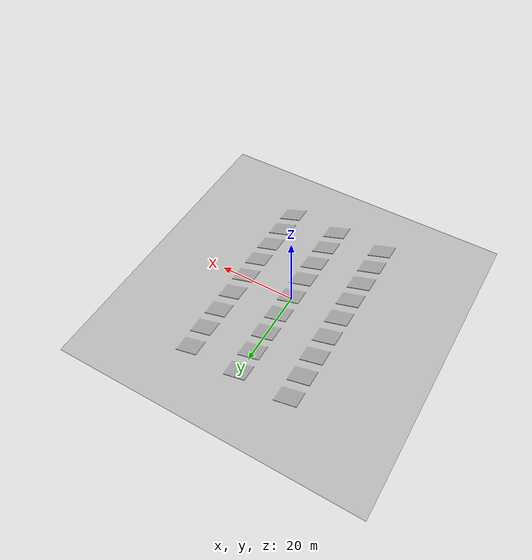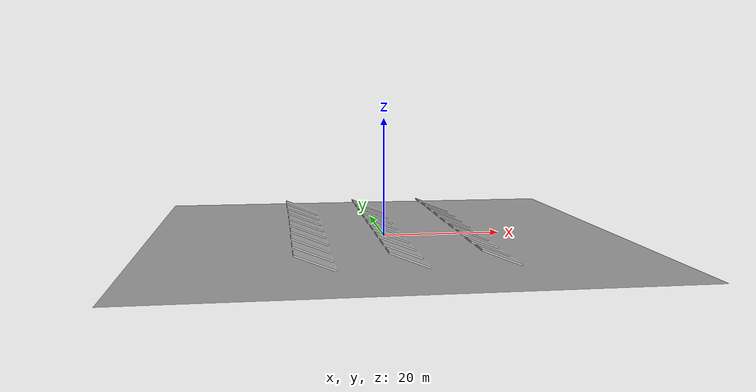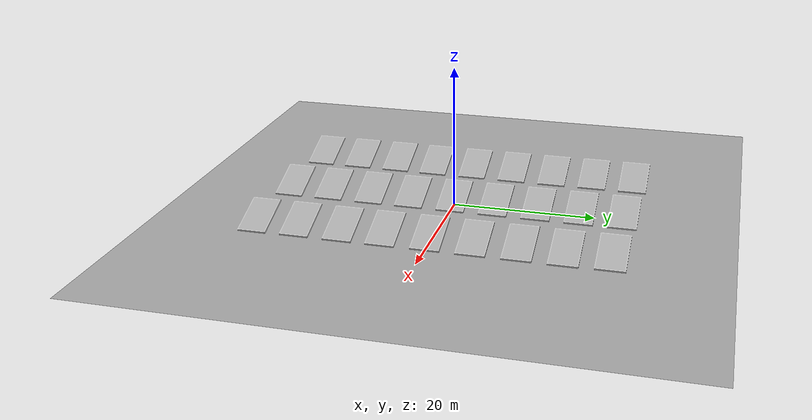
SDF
<?xml version='1.0' ?>
<sdf version='1.6'>
  <model name='Panel'>
    <static>true</static>
    <link name='link'>
      <pose>0 0 0 0 0 0</pose>
      <collision name='collision'>
        <geometry>
          <mesh>
            <uri>model://panel_solar/meshes/panel_solar1.dae</uri>
          </mesh>
        </geometry>
      </collision>
      <visual name='visual'>
        <geometry>
          <mesh>
            <uri>model://panel_solar/meshes/panel_solar1.dae</uri>
          </mesh>
        </geometry>
      </visual>
    </link>
  </model>
</sdf>
